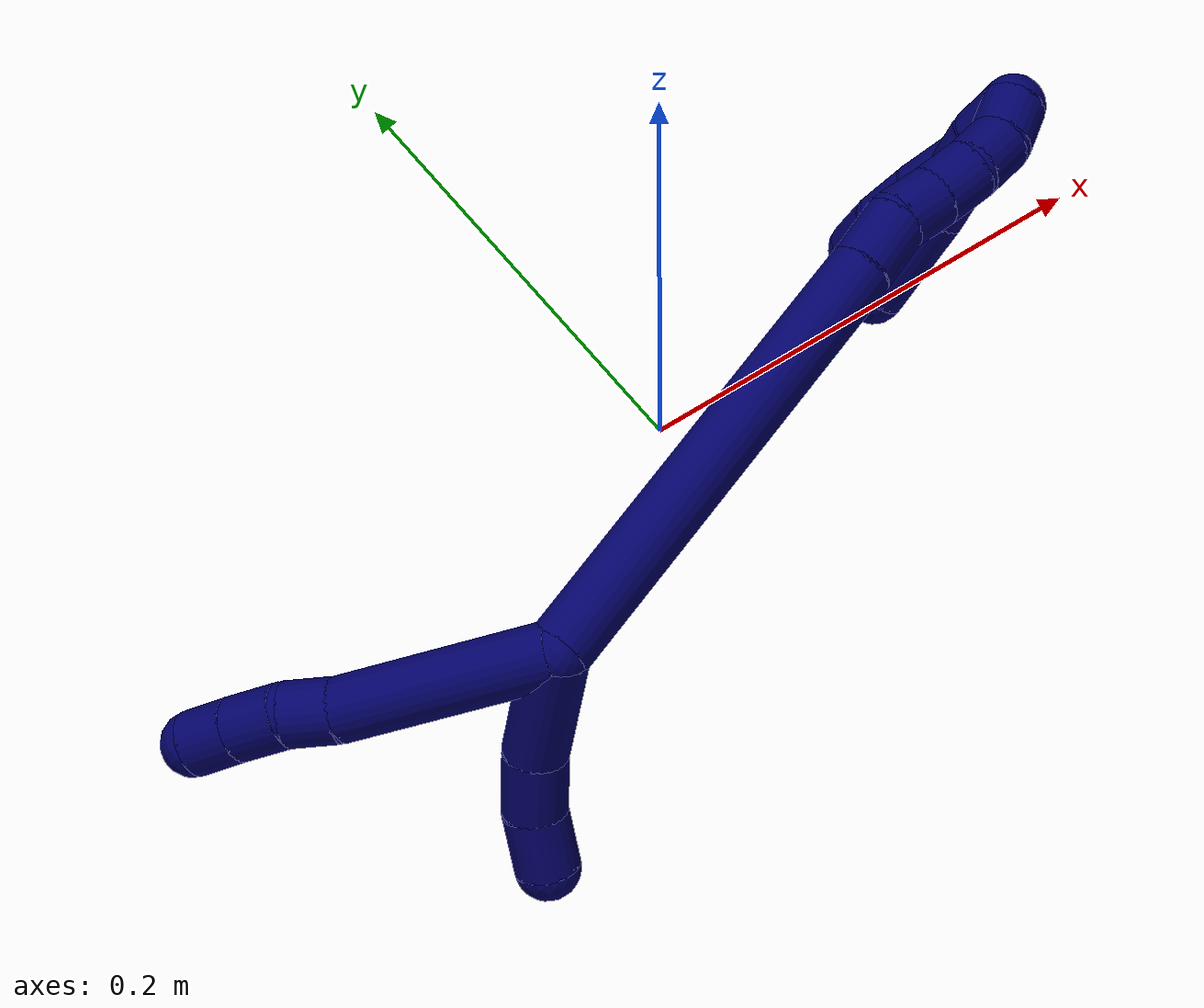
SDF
<sdf version="1.7">
 <world name="default">
  <model name="7">
   <static>0</static>
   <link name="7">
    <collision name="collision-cylinder-e_1_2_8">
     <pose>-0.015165 0.016208 -0.037745 -2.73599 -0.353643 1.43083</pose>
     <geometry><cylinder><radius>0.0125</radius><length>0.087576</length></cylinder></geometry>
     <surface>
      <friction><ode><mu>1.16</mu><mu2>1.16</mu2><slip1>0</slip1><slip2>0</slip2></ode></friction>
      <contact><ode><kp>1e+06</kp><kd>1</kd><max_vel>0</max_vel><min_depth>0.001</min_depth></ode></contact>
     </surface>
    </collision>
    <visual name="visual-cylinder-e_1_2_8">
     <pose>-0.015165 0.016208 -0.037745 -2.73599 -0.353643 1.43083</pose>
     <geometry><cylinder><radius>0.0125</radius><length>0.087576</length></cylinder></geometry>
     <material><ambient>0.003922 0 0.403922 1</ambient></material>
    </visual>
    <collision name="collision-cylinder-e_2_8_9">
     <pose>-0.034292 0.03751 -0.083268 -2.56172 -0.402978 1.2007</pose>
     <geometry><cylinder><radius>0.0125</radius><length>0.020211</length></cylinder></geometry>
     <surface>
      <friction><ode><mu>1.16</mu><mu2>1.16</mu2><slip1>0</slip1><slip2>0</slip2></ode></friction>
      <contact><ode><kp>1e+06</kp><kd>1</kd><max_vel>0</max_vel><min_depth>0.001</min_depth></ode></contact>
     </surface>
    </collision>
    <visual name="visual-cylinder-e_2_8_9">
     <pose>-0.034292 0.03751 -0.083268 -2.56172 -0.402978 1.2007</pose>
     <geometry><cylinder><radius>0.0125</radius><length>0.020211</length></cylinder></geometry>
     <material><ambient>0.003922 0 0.403922 1</ambient></material>
    </visual>
    <collision name="collision-cylinder-e_3_9_10">
     <pose>-0.040472 0.046626 -0.101139 -2.76245 -0.201234 0.968723</pose>
     <geometry><cylinder><radius>0.0125</radius><length>0.02218</length></cylinder></geometry>
     <surface>
      <friction><ode><mu>1.16</mu><mu2>1.16</mu2><slip1>0</slip1><slip2>0</slip2></ode></friction>
      <contact><ode><kp>1e+06</kp><kd>1</kd><max_vel>0</max_vel><min_depth>0.001</min_depth></ode></contact>
     </surface>
    </collision>
    <visual name="visual-cylinder-e_3_9_10">
     <pose>-0.040472 0.046626 -0.101139 -2.76245 -0.201234 0.968723</pose>
     <geometry><cylinder><radius>0.0125</radius><length>0.02218</length></cylinder></geometry>
     <material><ambient>0.003922 0 0.403922 1</ambient></material>
    </visual>
    <collision name="collision-cylinder-e_4_10_6">
     <pose>-0.044749 0.053934 -0.120468 -2.79966 -0.20716 1.08392</pose>
     <geometry><cylinder><radius>0.0125</radius><length>0.020033</length></cylinder></geometry>
     <surface>
      <friction><ode><mu>1.16</mu><mu2>1.16</mu2><slip1>0</slip1><slip2>0</slip2></ode></friction>
      <contact><ode><kp>1e+06</kp><kd>1</kd><max_vel>0</max_vel><min_depth>0.001</min_depth></ode></contact>
     </surface>
    </collision>
    <visual name="visual-cylinder-e_4_10_6">
     <pose>-0.044749 0.053934 -0.120468 -2.79966 -0.20716 1.08392</pose>
     <geometry><cylinder><radius>0.0125</radius><length>0.020033</length></cylinder></geometry>
     <material><ambient>0.003922 0 0.403922 1</ambient></material>
    </visual>
    <collision name="collision-cylinder-e_1_2_11">
     <pose>0.006161 -0.008761 -0.021947 2.76177 0.255033 1.17643</pose>
     <geometry><cylinder><radius>0.0125</radius><length>0.048842</length></cylinder></geometry>
     <surface>
      <friction><ode><mu>1.16</mu><mu2>1.16</mu2><slip1>0</slip1><slip2>0</slip2></ode></friction>
      <contact><ode><kp>1e+06</kp><kd>1</kd><max_vel>0</max_vel><min_depth>0.001</min_depth></ode></contact>
     </surface>
    </collision>
    <visual name="visual-cylinder-e_1_2_11">
     <pose>0.006161 -0.008761 -0.021947 2.76177 0.255033 1.17643</pose>
     <geometry><cylinder><radius>0.0125</radius><length>0.048842</length></cylinder></geometry>
     <material><ambient>0.003922 0 0.403922 1</ambient></material>
    </visual>
    <collision name="collision-cylinder-e_2_11_12">
     <pose>0.015728 -0.024496 -0.054622 2.56523 0.260184 0.83128</pose>
     <geometry><cylinder><radius>0.0125</radius><length>0.026482</length></cylinder></geometry>
     <surface>
      <friction><ode><mu>1.16</mu><mu2>1.16</mu2><slip1>0</slip1><slip2>0</slip2></ode></friction>
      <contact><ode><kp>1e+06</kp><kd>1</kd><max_vel>0</max_vel><min_depth>0.001</min_depth></ode></contact>
     </surface>
    </collision>
    <visual name="visual-cylinder-e_2_11_12">
     <pose>0.015728 -0.024496 -0.054622 2.56523 0.260184 0.83128</pose>
     <geometry><cylinder><radius>0.0125</radius><length>0.026482</length></cylinder></geometry>
     <material><ambient>0.003922 0 0.403922 1</ambient></material>
    </visual>
    <collision name="collision-cylinder-e_3_12_5">
     <pose>0.022713 -0.040156 -0.073348 2.31494 0.294251 0.651697</pose>
     <geometry><cylinder><radius>0.0125</radius><length>0.024675</length></cylinder></geometry>
     <surface>
      <friction><ode><mu>1.16</mu><mu2>1.16</mu2><slip1>0</slip1><slip2>0</slip2></ode></friction>
      <contact><ode><kp>1e+06</kp><kd>1</kd><max_vel>0</max_vel><min_depth>0.001</min_depth></ode></contact>
     </surface>
    </collision>
    <visual name="visual-cylinder-e_3_12_5">
     <pose>0.022713 -0.040156 -0.073348 2.31494 0.294251 0.651697</pose>
     <geometry><cylinder><radius>0.0125</radius><length>0.024675</length></cylinder></geometry>
     <material><ambient>0.003922 0 0.403922 1</ambient></material>
    </visual>
    <collision name="collision-cylinder-e_1_2_13">
     <pose>0.076121 0.035835 0.048513 -0.636211 0.900746 -0.315781</pose>
     <geometry><cylinder><radius>0.0125</radius><length>0.194238</length></cylinder></geometry>
     <surface>
      <friction><ode><mu>1.16</mu><mu2>1.16</mu2><slip1>0</slip1><slip2>0</slip2></ode></friction>
      <contact><ode><kp>1e+06</kp><kd>1</kd><max_vel>0</max_vel><min_depth>0.001</min_depth></ode></contact>
     </surface>
    </collision>
    <visual name="visual-cylinder-e_1_2_13">
     <pose>0.076121 0.035835 0.048513 -0.636211 0.900746 -0.315781</pose>
     <geometry><cylinder><radius>0.0125</radius><length>0.194238</length></cylinder></geometry>
     <material><ambient>0.003922 0 0.403922 1</ambient></material>
    </visual>
    <collision name="collision-cylinder-e_2_13_14">
     <pose>0.162428 0.076935 0.102829 -0.736795 0.91516 -0.3757</pose>
     <geometry><cylinder><radius>0.0125</radius><length>0.025701</length></cylinder></geometry>
     <surface>
      <friction><ode><mu>1.16</mu><mu2>1.16</mu2><slip1>0</slip1><slip2>0</slip2></ode></friction>
      <contact><ode><kp>1e+06</kp><kd>1</kd><max_vel>0</max_vel><min_depth>0.001</min_depth></ode></contact>
     </surface>
    </collision>
    <visual name="visual-cylinder-e_2_13_14">
     <pose>0.162428 0.076935 0.102829 -0.736795 0.91516 -0.3757</pose>
     <geometry><cylinder><radius>0.0125</radius><length>0.025701</length></cylinder></geometry>
     <material><ambient>0.003922 0 0.403922 1</ambient></material>
    </visual>
    <collision name="collision-cylinder-e_3_14_15">
     <pose>0.181689 0.083394 0.112674 -0.287349 1.13595 -0.184111</pose>
     <geometry><cylinder><radius>0.0125</radius><length>0.020012</length></cylinder></geometry>
     <surface>
      <friction><ode><mu>1.16</mu><mu2>1.16</mu2><slip1>0</slip1><slip2>0</slip2></ode></friction>
      <contact><ode><kp>1e+06</kp><kd>1</kd><max_vel>0</max_vel><min_depth>0.001</min_depth></ode></contact>
     </surface>
    </collision>
    <visual name="visual-cylinder-e_3_14_15">
     <pose>0.181689 0.083394 0.112674 -0.287349 1.13595 -0.184111</pose>
     <geometry><cylinder><radius>0.0125</radius><length>0.020012</length></cylinder></geometry>
     <material><ambient>0.003922 0 0.403922 1</ambient></material>
    </visual>
    <collision name="collision-cylinder-e_4_15_16">
     <pose>0.199472 0.086141 0.121394 -0.32057 1.05578 -0.187983</pose>
     <geometry><cylinder><radius>0.0125</radius><length>0.020012</length></cylinder></geometry>
     <surface>
      <friction><ode><mu>1.16</mu><mu2>1.16</mu2><slip1>0</slip1><slip2>0</slip2></ode></friction>
      <contact><ode><kp>1e+06</kp><kd>1</kd><max_vel>0</max_vel><min_depth>0.001</min_depth></ode></contact>
     </surface>
    </collision>
    <visual name="visual-cylinder-e_4_15_16">
     <pose>0.199472 0.086141 0.121394 -0.32057 1.05578 -0.187983</pose>
     <geometry><cylinder><radius>0.0125</radius><length>0.020012</length></cylinder></geometry>
     <material><ambient>0.003922 0 0.403922 1</ambient></material>
    </visual>
    <collision name="collision-cylinder-e_5_16_17">
     <pose>0.217365 0.090446 0.128955 -0.761983 1.16132 -0.514006</pose>
     <geometry><cylinder><radius>0.0125</radius><length>0.020027</length></cylinder></geometry>
     <surface>
      <friction><ode><mu>1.16</mu><mu2>1.16</mu2><slip1>0</slip1><slip2>0</slip2></ode></friction>
      <contact><ode><kp>1e+06</kp><kd>1</kd><max_vel>0</max_vel><min_depth>0.001</min_depth></ode></contact>
     </surface>
    </collision>
    <visual name="visual-cylinder-e_5_16_17">
     <pose>0.217365 0.090446 0.128955 -0.761983 1.16132 -0.514006</pose>
     <geometry><cylinder><radius>0.0125</radius><length>0.020027</length></cylinder></geometry>
     <material><ambient>0.003922 0 0.403922 1</ambient></material>
    </visual>
    <collision name="collision-cylinder-e_6_17_1">
     <pose>0.234414 0.09894 0.134143 -1.18912 0.904197 -0.634582</pose>
     <geometry><cylinder><radius>0.0125</radius><length>0.02001</length></cylinder></geometry>
     <surface>
      <friction><ode><mu>1.16</mu><mu2>1.16</mu2><slip1>0</slip1><slip2>0</slip2></ode></friction>
      <contact><ode><kp>1e+06</kp><kd>1</kd><max_vel>0</max_vel><min_depth>0.001</min_depth></ode></contact>
     </surface>
    </collision>
    <visual name="visual-cylinder-e_6_17_1">
     <pose>0.234414 0.09894 0.134143 -1.18912 0.904197 -0.634582</pose>
     <geometry><cylinder><radius>0.0125</radius><length>0.02001</length></cylinder></geometry>
     <material><ambient>0.003922 0 0.403922 1</ambient></material>
    </visual>
    <collision name="collision-cylinder-e_1_1_18">
     <pose>0.244384 0.103954 0.120871 3.09494 0.134256 2.47358</pose>
     <geometry><cylinder><radius>0.0125</radius><length>0.03147</length></cylinder></geometry>
     <surface>
      <friction><ode><mu>1.16</mu><mu2>1.16</mu2><slip1>0</slip1><slip2>0</slip2></ode></friction>
      <contact><ode><kp>1e+06</kp><kd>1</kd><max_vel>0</max_vel><min_depth>0.001</min_depth></ode></contact>
     </surface>
    </collision>
    <visual name="visual-cylinder-e_1_1_18">
     <pose>0.244384 0.103954 0.120871 3.09494 0.134256 2.47358</pose>
     <geometry><cylinder><radius>0.0125</radius><length>0.03147</length></cylinder></geometry>
     <material><ambient>0.003922 0 0.403922 1</ambient></material>
    </visual>
    <collision name="collision-cylinder-e_2_18_19">
     <pose>0.244495 0.104764 0.091902 -3.02732 -0.14692 1.8202</pose>
     <geometry><cylinder><radius>0.0125</radius><length>0.027255</length></cylinder></geometry>
     <surface>
      <friction><ode><mu>1.16</mu><mu2>1.16</mu2><slip1>0</slip1><slip2>0</slip2></ode></friction>
      <contact><ode><kp>1e+06</kp><kd>1</kd><max_vel>0</max_vel><min_depth>0.001</min_depth></ode></contact>
     </surface>
    </collision>
    <visual name="visual-cylinder-e_2_18_19">
     <pose>0.244495 0.104764 0.091902 -3.02732 -0.14692 1.8202</pose>
     <geometry><cylinder><radius>0.0125</radius><length>0.027255</length></cylinder></geometry>
     <material><ambient>0.003922 0 0.403922 1</ambient></material>
    </visual>
    <collision name="collision-cylinder-e_3_19_20">
     <pose>0.241745 0.10695 0.068232 -3.07856 -0.073164 1.71935</pose>
     <geometry><cylinder><radius>0.0125</radius><length>0.02065</length></cylinder></geometry>
     <surface>
      <friction><ode><mu>1.16</mu><mu2>1.16</mu2><slip1>0</slip1><slip2>0</slip2></ode></friction>
      <contact><ode><kp>1e+06</kp><kd>1</kd><max_vel>0</max_vel><min_depth>0.001</min_depth></ode></contact>
     </surface>
    </collision>
    <visual name="visual-cylinder-e_3_19_20">
     <pose>0.241745 0.10695 0.068232 -3.07856 -0.073164 1.71935</pose>
     <geometry><cylinder><radius>0.0125</radius><length>0.02065</length></cylinder></geometry>
     <material><ambient>0.003922 0 0.403922 1</ambient></material>
    </visual>
    <collision name="collision-cylinder-e_4_20_4">
     <pose>0.243514 0.108045 0.047966 -3.09695 0.247263 -2.7861</pose>
     <geometry><cylinder><radius>0.0125</radius><length>0.020625</length></cylinder></geometry>
     <surface>
      <friction><ode><mu>1.16</mu><mu2>1.16</mu2><slip1>0</slip1><slip2>0</slip2></ode></friction>
      <contact><ode><kp>1e+06</kp><kd>1</kd><max_vel>0</max_vel><min_depth>0.001</min_depth></ode></contact>
     </surface>
    </collision>
    <visual name="visual-cylinder-e_4_20_4">
     <pose>0.243514 0.108045 0.047966 -3.09695 0.247263 -2.7861</pose>
     <geometry><cylinder><radius>0.0125</radius><length>0.020625</length></cylinder></geometry>
     <material><ambient>0.003922 0 0.403922 1</ambient></material>
    </visual>
    <collision name="collision-cylinder-e_1_1_21">
     <pose>0.242269 0.104709 0.126233 -3.13882 -0.000871 0.607879</pose>
     <geometry><cylinder><radius>0.0125</radius><length>0.02043</length></cylinder></geometry>
     <surface>
      <friction><ode><mu>1.16</mu><mu2>1.16</mu2><slip1>0</slip1><slip2>0</slip2></ode></friction>
      <contact><ode><kp>1e+06</kp><kd>1</kd><max_vel>0</max_vel><min_depth>0.001</min_depth></ode></contact>
     </surface>
    </collision>
    <visual name="visual-cylinder-e_1_1_21">
     <pose>0.242269 0.104709 0.126233 -3.13882 -0.000871 0.607879</pose>
     <geometry><cylinder><radius>0.0125</radius><length>0.02043</length></cylinder></geometry>
     <material><ambient>0.003922 0 0.403922 1</ambient></material>
    </visual>
    <collision name="collision-cylinder-e_2_21_22">
     <pose>0.242242 0.100702 0.097594 2.92596 -0.000953 -0.008808</pose>
     <geometry><cylinder><radius>0.0125</radius><length>0.037722</length></cylinder></geometry>
     <surface>
      <friction><ode><mu>1.16</mu><mu2>1.16</mu2><slip1>0</slip1><slip2>0</slip2></ode></friction>
      <contact><ode><kp>1e+06</kp><kd>1</kd><max_vel>0</max_vel><min_depth>0.001</min_depth></ode></contact>
     </surface>
    </collision>
    <visual name="visual-cylinder-e_2_21_22">
     <pose>0.242242 0.100702 0.097594 2.92596 -0.000953 -0.008808</pose>
     <geometry><cylinder><radius>0.0125</radius><length>0.037722</length></cylinder></geometry>
     <material><ambient>0.003922 0 0.403922 1</ambient></material>
    </visual>
    <collision name="collision-cylinder-e_3_22_3">
     <pose>0.239072 0.092564 0.058895 2.94194 -0.151206 -1.29502</pose>
     <geometry><cylinder><radius>0.0125</radius><length>0.041848</length></cylinder></geometry>
     <surface>
      <friction><ode><mu>1.16</mu><mu2>1.16</mu2><slip1>0</slip1><slip2>0</slip2></ode></friction>
      <contact><ode><kp>1e+06</kp><kd>1</kd><max_vel>0</max_vel><min_depth>0.001</min_depth></ode></contact>
     </surface>
    </collision>
    <visual name="visual-cylinder-e_3_22_3">
     <pose>0.239072 0.092564 0.058895 2.94194 -0.151206 -1.29502</pose>
     <geometry><cylinder><radius>0.0125</radius><length>0.041848</length></cylinder></geometry>
     <material><ambient>0.003922 0 0.403922 1</ambient></material>
    </visual>
    <collision name="collision-sphere-3">
     <pose>0.23592 0.088462 0.038621 0 -0 0</pose>
     <geometry><sphere><radius>0.0125</radius></sphere></geometry>
     <surface>
      <friction><ode><mu>1.16</mu><mu2>1.16</mu2><slip1>0</slip1><slip2>0</slip2></ode></friction>
      <contact><ode><kp>1e+06</kp><kd>1</kd><max_vel>0</max_vel><min_depth>0.001</min_depth></ode></contact>
     </surface>
    </collision>
    <visual name="visual-sphere-3">
     <pose>0.23592 0.088462 0.038621 0 -0 0</pose>
     <geometry><sphere><radius>0.0125</radius></sphere></geometry>
     <material><ambient>0.003922 0 0.403922 1</ambient></material>
    </visual>
    <collision name="collision-sphere-22">
     <pose>0.242224 0.096666 0.07917 0 -0 0</pose>
     <geometry><sphere><radius>0.0125</radius></sphere></geometry>
     <surface>
      <friction><ode><mu>1.16</mu><mu2>1.16</mu2><slip1>0</slip1><slip2>0</slip2></ode></friction>
      <contact><ode><kp>1e+06</kp><kd>1</kd><max_vel>0</max_vel><min_depth>0.001</min_depth></ode></contact>
     </surface>
    </collision>
    <visual name="visual-sphere-22">
     <pose>0.242224 0.096666 0.07917 0 -0 0</pose>
     <geometry><sphere><radius>0.0125</radius></sphere></geometry>
     <material><ambient>0.003922 0 0.403922 1</ambient></material>
    </visual>
    <collision name="collision-sphere-21">
     <pose>0.24226 0.104738 0.116018 0 -0 0</pose>
     <geometry><sphere><radius>0.0125</radius></sphere></geometry>
     <surface>
      <friction><ode><mu>1.16</mu><mu2>1.16</mu2><slip1>0</slip1><slip2>0</slip2></ode></friction>
      <contact><ode><kp>1e+06</kp><kd>1</kd><max_vel>0</max_vel><min_depth>0.001</min_depth></ode></contact>
     </surface>
    </collision>
    <visual name="visual-sphere-21">
     <pose>0.24226 0.104738 0.116018 0 -0 0</pose>
     <geometry><sphere><radius>0.0125</radius></sphere></geometry>
     <material><ambient>0.003922 0 0.403922 1</ambient></material>
    </visual>
    <collision name="collision-sphere-4">
     <pose>0.246038 0.108491 0.037978 0 -0 0</pose>
     <geometry><sphere><radius>0.0125</radius></sphere></geometry>
     <surface>
      <friction><ode><mu>1.16</mu><mu2>1.16</mu2><slip1>0</slip1><slip2>0</slip2></ode></friction>
      <contact><ode><kp>1e+06</kp><kd>1</kd><max_vel>0</max_vel><min_depth>0.001</min_depth></ode></contact>
     </surface>
    </collision>
    <visual name="visual-sphere-4">
     <pose>0.246038 0.108491 0.037978 0 -0 0</pose>
     <geometry><sphere><radius>0.0125</radius></sphere></geometry>
     <material><ambient>0.003922 0 0.403922 1</ambient></material>
    </visual>
    <collision name="collision-sphere-20">
     <pose>0.24099 0.107598 0.057955 0 -0 0</pose>
     <geometry><sphere><radius>0.0125</radius></sphere></geometry>
     <surface>
      <friction><ode><mu>1.16</mu><mu2>1.16</mu2><slip1>0</slip1><slip2>0</slip2></ode></friction>
      <contact><ode><kp>1e+06</kp><kd>1</kd><max_vel>0</max_vel><min_depth>0.001</min_depth></ode></contact>
     </surface>
    </collision>
    <visual name="visual-sphere-20">
     <pose>0.24099 0.107598 0.057955 0 -0 0</pose>
     <geometry><sphere><radius>0.0125</radius></sphere></geometry>
     <material><ambient>0.003922 0 0.403922 1</ambient></material>
    </visual>
    <collision name="collision-sphere-11">
     <pose>0.012322 -0.017523 -0.043894 0 -0 0</pose>
     <geometry><sphere><radius>0.0125</radius></sphere></geometry>
     <surface>
      <friction><ode><mu>1.16</mu><mu2>1.16</mu2><slip1>0</slip1><slip2>0</slip2></ode></friction>
      <contact><ode><kp>1e+06</kp><kd>1</kd><max_vel>0</max_vel><min_depth>0.001</min_depth></ode></contact>
     </surface>
    </collision>
    <visual name="visual-sphere-11">
     <pose>0.012322 -0.017523 -0.043894 0 -0 0</pose>
     <geometry><sphere><radius>0.0125</radius></sphere></geometry>
     <material><ambient>0.003922 0 0.403922 1</ambient></material>
    </visual>
    <collision name="collision-sphere-6">
     <pose>-0.046809 0.057221 -0.129702 0 -0 0</pose>
     <geometry><sphere><radius>0.0125</radius></sphere></geometry>
     <surface>
      <friction><ode><mu>1.16</mu><mu2>1.16</mu2><slip1>0</slip1><slip2>0</slip2></ode></friction>
      <contact><ode><kp>1e+06</kp><kd>1</kd><max_vel>0</max_vel><min_depth>0.001</min_depth></ode></contact>
     </surface>
    </collision>
    <visual name="visual-sphere-6">
     <pose>-0.046809 0.057221 -0.129702 0 -0 0</pose>
     <geometry><sphere><radius>0.0125</radius></sphere></geometry>
     <material><ambient>0.003922 0 0.403922 1</ambient></material>
    </visual>
    <collision name="collision-sphere-10">
     <pose>-0.042689 0.050647 -0.111233 0 -0 0</pose>
     <geometry><sphere><radius>0.0125</radius></sphere></geometry>
     <surface>
      <friction><ode><mu>1.16</mu><mu2>1.16</mu2><slip1>0</slip1><slip2>0</slip2></ode></friction>
      <contact><ode><kp>1e+06</kp><kd>1</kd><max_vel>0</max_vel><min_depth>0.001</min_depth></ode></contact>
     </surface>
    </collision>
    <visual name="visual-sphere-10">
     <pose>-0.042689 0.050647 -0.111233 0 -0 0</pose>
     <geometry><sphere><radius>0.0125</radius></sphere></geometry>
     <material><ambient>0.003922 0 0.403922 1</ambient></material>
    </visual>
    <collision name="collision-sphere-9">
     <pose>-0.038255 0.042604 -0.091044 0 -0 0</pose>
     <geometry><sphere><radius>0.0125</radius></sphere></geometry>
     <surface>
      <friction><ode><mu>1.16</mu><mu2>1.16</mu2><slip1>0</slip1><slip2>0</slip2></ode></friction>
      <contact><ode><kp>1e+06</kp><kd>1</kd><max_vel>0</max_vel><min_depth>0.001</min_depth></ode></contact>
     </surface>
    </collision>
    <visual name="visual-sphere-9">
     <pose>-0.038255 0.042604 -0.091044 0 -0 0</pose>
     <geometry><sphere><radius>0.0125</radius></sphere></geometry>
     <material><ambient>0.003922 0 0.403922 1</ambient></material>
    </visual>
    <collision name="collision-sphere-2">
     <geometry><sphere><radius>0.0125</radius></sphere></geometry>
     <surface>
      <friction><ode><mu>1.16</mu><mu2>1.16</mu2><slip1>0</slip1><slip2>0</slip2></ode></friction>
      <contact><ode><kp>1e+06</kp><kd>1</kd><max_vel>0</max_vel><min_depth>0.001</min_depth></ode></contact>
     </surface>
    </collision>
    <visual name="visual-sphere-2">
     <geometry><sphere><radius>0.0125</radius></sphere></geometry>
     <material><ambient>0.003922 0 0.403922 1</ambient></material>
    </visual>
    <collision name="collision-sphere-19">
     <pose>0.2425 0.106301 0.078509 0 -0 0</pose>
     <geometry><sphere><radius>0.0125</radius></sphere></geometry>
     <surface>
      <friction><ode><mu>1.16</mu><mu2>1.16</mu2><slip1>0</slip1><slip2>0</slip2></ode></friction>
      <contact><ode><kp>1e+06</kp><kd>1</kd><max_vel>0</max_vel><min_depth>0.001</min_depth></ode></contact>
     </surface>
    </collision>
    <visual name="visual-sphere-19">
     <pose>0.2425 0.106301 0.078509 0 -0 0</pose>
     <geometry><sphere><radius>0.0125</radius></sphere></geometry>
     <material><ambient>0.003922 0 0.403922 1</ambient></material>
    </visual>
    <collision name="collision-sphere-8">
     <pose>-0.030329 0.032417 -0.075491 0 -0 0</pose>
     <geometry><sphere><radius>0.0125</radius></sphere></geometry>
     <surface>
      <friction><ode><mu>1.16</mu><mu2>1.16</mu2><slip1>0</slip1><slip2>0</slip2></ode></friction>
      <contact><ode><kp>1e+06</kp><kd>1</kd><max_vel>0</max_vel><min_depth>0.001</min_depth></ode></contact>
     </surface>
    </collision>
    <visual name="visual-sphere-8">
     <pose>-0.030329 0.032417 -0.075491 0 -0 0</pose>
     <geometry><sphere><radius>0.0125</radius></sphere></geometry>
     <material><ambient>0.003922 0 0.403922 1</ambient></material>
    </visual>
    <collision name="collision-sphere-12">
     <pose>0.019135 -0.031469 -0.065351 0 -0 0</pose>
     <geometry><sphere><radius>0.0125</radius></sphere></geometry>
     <surface>
      <friction><ode><mu>1.16</mu><mu2>1.16</mu2><slip1>0</slip1><slip2>0</slip2></ode></friction>
      <contact><ode><kp>1e+06</kp><kd>1</kd><max_vel>0</max_vel><min_depth>0.001</min_depth></ode></contact>
     </surface>
    </collision>
    <visual name="visual-sphere-12">
     <pose>0.019135 -0.031469 -0.065351 0 -0 0</pose>
     <geometry><sphere><radius>0.0125</radius></sphere></geometry>
     <material><ambient>0.003922 0 0.403922 1</ambient></material>
    </visual>
    <collision name="collision-sphere-5">
     <pose>0.026291 -0.048842 -0.081346 0 -0 0</pose>
     <geometry><sphere><radius>0.0125</radius></sphere></geometry>
     <surface>
      <friction><ode><mu>1.16</mu><mu2>1.16</mu2><slip1>0</slip1><slip2>0</slip2></ode></friction>
      <contact><ode><kp>1e+06</kp><kd>1</kd><max_vel>0</max_vel><min_depth>0.001</min_depth></ode></contact>
     </surface>
    </collision>
    <visual name="visual-sphere-5">
     <pose>0.026291 -0.048842 -0.081346 0 -0 0</pose>
     <geometry><sphere><radius>0.0125</radius></sphere></geometry>
     <material><ambient>0.003922 0 0.403922 1</ambient></material>
    </visual>
    <collision name="collision-sphere-13">
     <pose>0.152242 0.071671 0.097027 0 -0 0</pose>
     <geometry><sphere><radius>0.0125</radius></sphere></geometry>
     <surface>
      <friction><ode><mu>1.16</mu><mu2>1.16</mu2><slip1>0</slip1><slip2>0</slip2></ode></friction>
      <contact><ode><kp>1e+06</kp><kd>1</kd><max_vel>0</max_vel><min_depth>0.001</min_depth></ode></contact>
     </surface>
    </collision>
    <visual name="visual-sphere-13">
     <pose>0.152242 0.071671 0.097027 0 -0 0</pose>
     <geometry><sphere><radius>0.0125</radius></sphere></geometry>
     <material><ambient>0.003922 0 0.403922 1</ambient></material>
    </visual>
    <collision name="collision-sphere-14">
     <pose>0.172615 0.082199 0.108632 0 -0 0</pose>
     <geometry><sphere><radius>0.0125</radius></sphere></geometry>
     <surface>
      <friction><ode><mu>1.16</mu><mu2>1.16</mu2><slip1>0</slip1><slip2>0</slip2></ode></friction>
      <contact><ode><kp>1e+06</kp><kd>1</kd><max_vel>0</max_vel><min_depth>0.001</min_depth></ode></contact>
     </surface>
    </collision>
    <visual name="visual-sphere-14">
     <pose>0.172615 0.082199 0.108632 0 -0 0</pose>
     <geometry><sphere><radius>0.0125</radius></sphere></geometry>
     <material><ambient>0.003922 0 0.403922 1</ambient></material>
    </visual>
    <collision name="collision-sphere-15">
     <pose>0.190764 0.084588 0.116716 0 -0 0</pose>
     <geometry><sphere><radius>0.0125</radius></sphere></geometry>
     <surface>
      <friction><ode><mu>1.16</mu><mu2>1.16</mu2><slip1>0</slip1><slip2>0</slip2></ode></friction>
      <contact><ode><kp>1e+06</kp><kd>1</kd><max_vel>0</max_vel><min_depth>0.001</min_depth></ode></contact>
     </surface>
    </collision>
    <visual name="visual-sphere-15">
     <pose>0.190764 0.084588 0.116716 0 -0 0</pose>
     <geometry><sphere><radius>0.0125</radius></sphere></geometry>
     <material><ambient>0.003922 0 0.403922 1</ambient></material>
    </visual>
    <collision name="collision-sphere-16">
     <pose>0.20818 0.087694 0.126071 0 -0 0</pose>
     <geometry><sphere><radius>0.0125</radius></sphere></geometry>
     <surface>
      <friction><ode><mu>1.16</mu><mu2>1.16</mu2><slip1>0</slip1><slip2>0</slip2></ode></friction>
      <contact><ode><kp>1e+06</kp><kd>1</kd><max_vel>0</max_vel><min_depth>0.001</min_depth></ode></contact>
     </surface>
    </collision>
    <visual name="visual-sphere-16">
     <pose>0.20818 0.087694 0.126071 0 -0 0</pose>
     <geometry><sphere><radius>0.0125</radius></sphere></geometry>
     <material><ambient>0.003922 0 0.403922 1</ambient></material>
    </visual>
    <collision name="collision-sphere-17">
     <pose>0.226551 0.093199 0.131839 0 -0 0</pose>
     <geometry><sphere><radius>0.0125</radius></sphere></geometry>
     <surface>
      <friction><ode><mu>1.16</mu><mu2>1.16</mu2><slip1>0</slip1><slip2>0</slip2></ode></friction>
      <contact><ode><kp>1e+06</kp><kd>1</kd><max_vel>0</max_vel><min_depth>0.001</min_depth></ode></contact>
     </surface>
    </collision>
    <visual name="visual-sphere-17">
     <pose>0.226551 0.093199 0.131839 0 -0 0</pose>
     <geometry><sphere><radius>0.0125</radius></sphere></geometry>
     <material><ambient>0.003922 0 0.403922 1</ambient></material>
    </visual>
    <collision name="collision-sphere-1">
     <pose>0.242278 0.104681 0.136448 0 -0 0</pose>
     <geometry><sphere><radius>0.0125</radius></sphere></geometry>
     <surface>
      <friction><ode><mu>1.16</mu><mu2>1.16</mu2><slip1>0</slip1><slip2>0</slip2></ode></friction>
      <contact><ode><kp>1e+06</kp><kd>1</kd><max_vel>0</max_vel><min_depth>0.001</min_depth></ode></contact>
     </surface>
    </collision>
    <visual name="visual-sphere-1">
     <pose>0.242278 0.104681 0.136448 0 -0 0</pose>
     <geometry><sphere><radius>0.0125</radius></sphere></geometry>
     <material><ambient>0.003922 0 0.403922 1</ambient></material>
    </visual>
    <collision name="collision-sphere-18">
     <pose>0.24649 0.103227 0.105295 0 -0 0</pose>
     <geometry><sphere><radius>0.0125</radius></sphere></geometry>
     <surface>
      <friction><ode><mu>1.16</mu><mu2>1.16</mu2><slip1>0</slip1><slip2>0</slip2></ode></friction>
      <contact><ode><kp>1e+06</kp><kd>1</kd><max_vel>0</max_vel><min_depth>0.001</min_depth></ode></contact>
     </surface>
    </collision>
    <visual name="visual-sphere-18">
     <pose>0.24649 0.103227 0.105295 0 -0 0</pose>
     <geometry><sphere><radius>0.0125</radius></sphere></geometry>
     <material><ambient>0.003922 0 0.403922 1</ambient></material>
    </visual>
    <inertial>
     <pose>0.108741 0.051629 0.033967 0 -0 0</pose>
     <mass>0.75</mass>
     <inertia>
      <ixx>0.000359</ixx>
      <ixy>0</ixy>
      <ixz>0</ixz>
      <iyy>0.000519</iyy>
      <iyz>0</iyz>
      <izz>-0.000739</izz>
     </inertia>
    </inertial>
   </link>
   <pose>-0.13226 -0.120651 0.105035 0.324445 0.546347 0.139643</pose>
  </model>
 </world>
</sdf>
